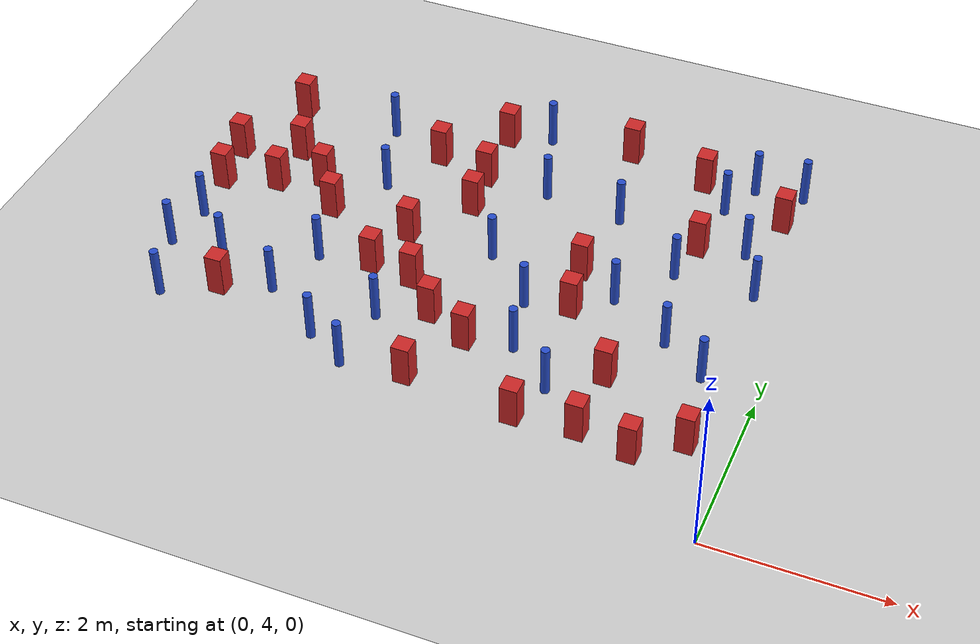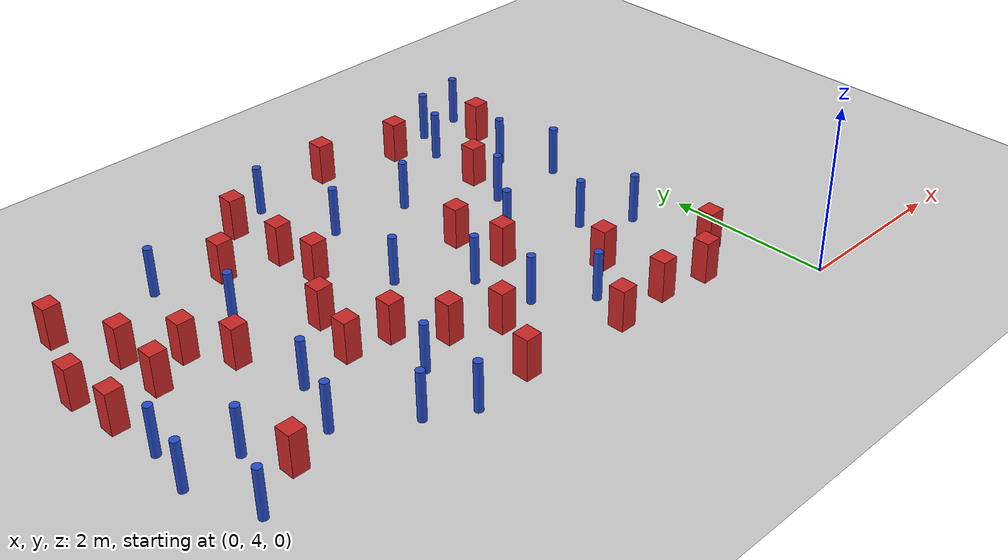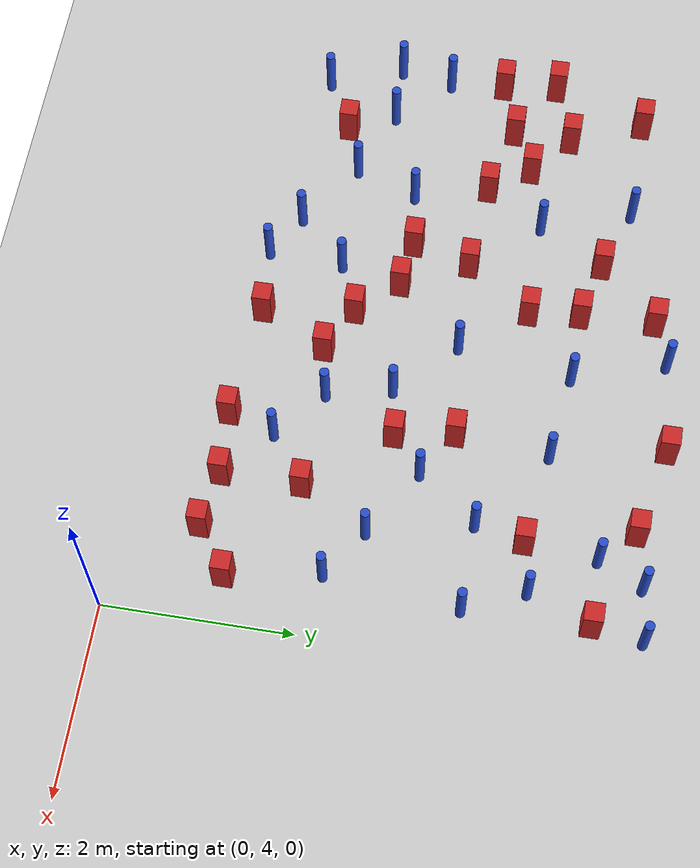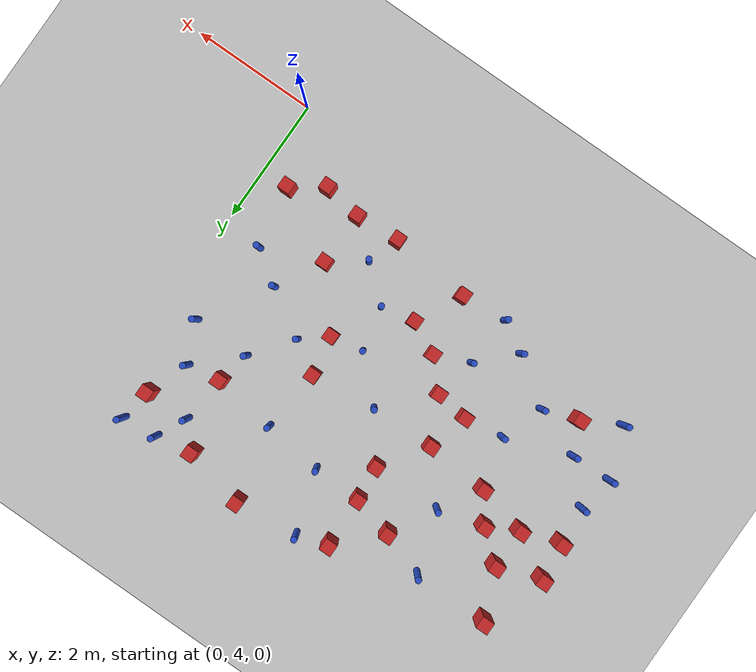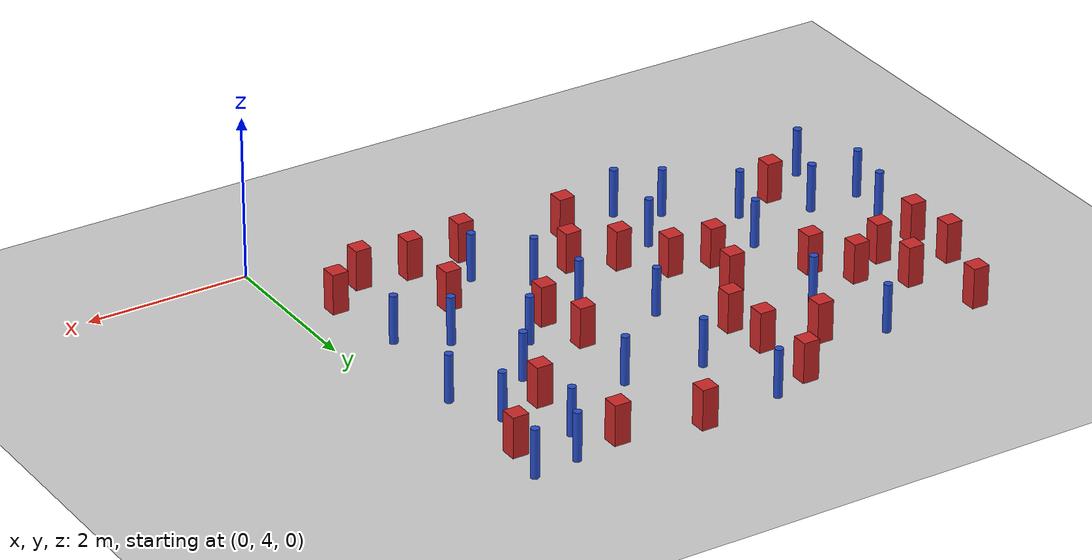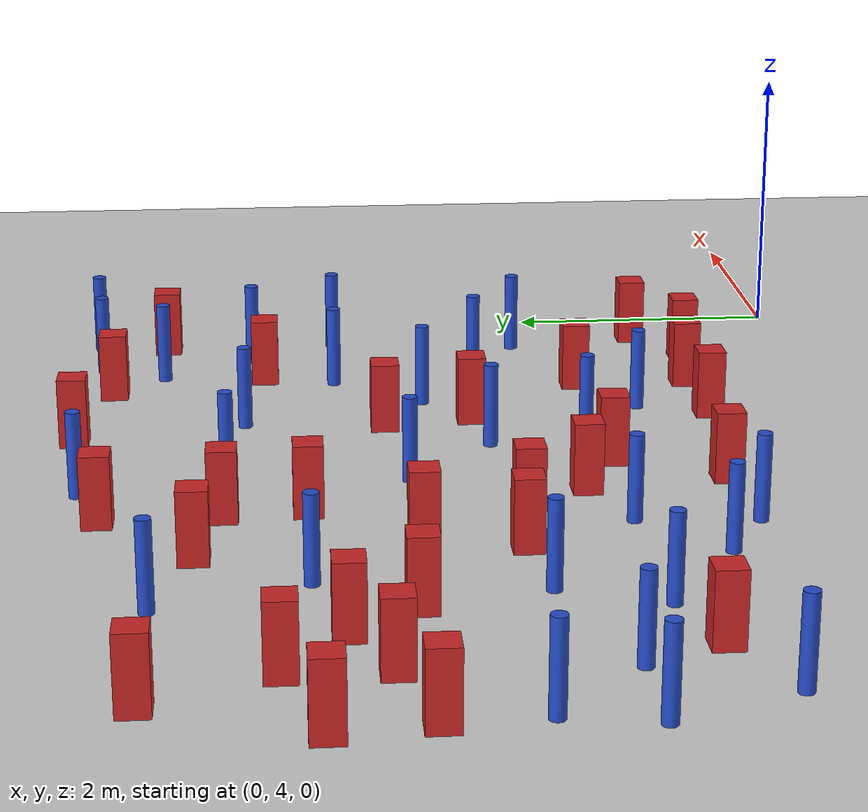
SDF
<sdf version="1.6">
 <world name="default">
  <model name="ground_plane">
   <static>1</static>
   <link name="link">
    <collision name="collision">
     <geometry><plane><normal>0 0 1</normal><size>100 100</size></plane></geometry>
     <surface><friction><ode><mu>100</mu><mu2>50</mu2></ode></friction></surface>
    </collision>
    <visual name="visual">
     <cast_shadows>0</cast_shadows>
     <geometry><plane><normal>0 0 1</normal><size>100 100</size></plane></geometry>
     <material>
      <ambient>1.0 1.0 1.0 1.0</ambient>
      <diffuse>0.8 0.8 0.8 1.0</diffuse>
      <specular>0.01 0.01 0.01 1.000000</specular>
     </material>
    </visual>
   </link>
  </model>
  <model name="pole_obstacle6">
   <static>true</static>
   <pose>-3.25830325045 8.38387927455 -9.4761961606e-06 5.49618799729e-07 2.36310414e-07 -1.55090534824e-07</pose>
   <link name="link">
    <pose>0 0 0.3 0 -0 0</pose>
    <inertial>
     <mass>1</mass>
     <inertia><ixx>0.145833</ixx><ixy>0</ixy><ixz>0</ixz><iyy>0.145833</iyy><iyz>0</iyz><izz>0.125</izz></inertia>
    </inertial>
    <collision name="collision">
     <geometry><cylinder><radius>0.05</radius><length>.6</length></cylinder></geometry>
    </collision>
    <visual name="visual">
     <geometry><cylinder><radius>0.05</radius><length>.6</length></cylinder></geometry>
     <material>
      <script><name>Gazebo/Blue</name><uri>file://media/materials/scripts/gazebo.material</uri></script>
     </material>
    </visual>
   </link>
  </model>
  <model name="pole_obstacle9">
   <static>true</static>
   <pose>-0.49709709872 7.59157421841 -9.47619616065e-06 5.49618799737e-07 2.36310414063e-07 -1.55090534797e-07</pose>
   <link name="link">
    <pose>0 0 0.3 0 -0 0</pose>
    <inertial>
     <mass>1</mass>
     <inertia><ixx>0.145833</ixx><ixy>0</ixy><ixz>0</ixz><iyy>0.145833</iyy><iyz>0</iyz><izz>0.125</izz></inertia>
    </inertial>
    <collision name="collision">
     <geometry><cylinder><radius>0.05</radius><length>.6</length></cylinder></geometry>
    </collision>
    <visual name="visual">
     <geometry><cylinder><radius>0.05</radius><length>.6</length></cylinder></geometry>
     <material>
      <script><name>Gazebo/Blue</name><uri>file://media/materials/scripts/gazebo.material</uri></script>
     </material>
    </visual>
   </link>
  </model>
  <model name="square_post_obstacle10">
   <static>true</static>
   <pose>-3.97500162084 7.84303103397 -6.11067671241e-07 -5.50515727128e-06 -8.79689657224e-07 2.37013304536e-05</pose>
   <link name="link">
    <pose>0 0 0.25 0 -0 0</pose>
    <inertial>
     <mass>100</mass>
     <inertia>
      <ixx>0.166667</ixx>
      <ixy>0</ixy>
      <ixz>0</ixz>
      <iyy>0.166667</iyy>
      <iyz>0</iyz>
      <izz>0.166667</izz>
     </inertia>
    </inertial>
    <collision name="collision"><geometry><box><size>.2 .2 .5</size></box></geometry></collision>
    <visual name="visual">
     <geometry><box><size>.2 .2 .5</size></box></geometry>
     <material>
      <script><name>Gazebo/Red</name><uri>file://media/materials/scripts/gazebo.material</uri></script>
     </material>
    </visual>
   </link>
  </model>
  <model name="pole_obstacle17">
   <static>true</static>
   <pose>-1.9095532421 6.96453747486 -9.47619616065e-06 5.49618799737e-07 2.36310414061e-07 -1.550905348e-07</pose>
   <link name="link">
    <pose>0 0 0.3 0 -0 0</pose>
    <inertial>
     <mass>1</mass>
     <inertia><ixx>0.145833</ixx><ixy>0</ixy><ixz>0</ixz><iyy>0.145833</iyy><iyz>0</iyz><izz>0.125</izz></inertia>
    </inertial>
    <collision name="collision">
     <geometry><cylinder><radius>0.05</radius><length>.6</length></cylinder></geometry>
    </collision>
    <visual name="visual">
     <geometry><cylinder><radius>0.05</radius><length>.6</length></cylinder></geometry>
     <material>
      <script><name>Gazebo/Blue</name><uri>file://media/materials/scripts/gazebo.material</uri></script>
     </material>
    </visual>
   </link>
  </model>
  <model name="pole_obstacle25">
   <static>true</static>
   <pose>-3.44679426188 7.15130122723 -9.4761961606e-06 5.49618799729e-07 2.36310414006e-07 -1.55090534822e-07</pose>
   <link name="link">
    <pose>0 0 0.3 0 -0 0</pose>
    <inertial>
     <mass>1</mass>
     <inertia><ixx>0.145833</ixx><ixy>0</ixy><ixz>0</ixz><iyy>0.145833</iyy><iyz>0</iyz><izz>0.125</izz></inertia>
    </inertial>
    <collision name="collision">
     <geometry><cylinder><radius>0.05</radius><length>.6</length></cylinder></geometry>
    </collision>
    <visual name="visual">
     <geometry><cylinder><radius>0.05</radius><length>.6</length></cylinder></geometry>
     <material>
      <script><name>Gazebo/Blue</name><uri>file://media/materials/scripts/gazebo.material</uri></script>
     </material>
    </visual>
   </link>
  </model>
  <model name="pole_obstacle29">
   <static>true</static>
   <pose>-5.40304116629 8.81195872073 -9.47619616065e-06 5.49618799737e-07 2.36310414065e-07 -1.55090534796e-07</pose>
   <link name="link">
    <pose>0 0 0.3 0 -0 0</pose>
    <inertial>
     <mass>1</mass>
     <inertia><ixx>0.145833</ixx><ixy>0</ixy><ixz>0</ixz><iyy>0.145833</iyy><iyz>0</iyz><izz>0.125</izz></inertia>
    </inertial>
    <collision name="collision">
     <geometry><cylinder><radius>0.05</radius><length>.6</length></cylinder></geometry>
    </collision>
    <visual name="visual">
     <geometry><cylinder><radius>0.05</radius><length>.6</length></cylinder></geometry>
     <material>
      <script><name>Gazebo/Blue</name><uri>file://media/materials/scripts/gazebo.material</uri></script>
     </material>
    </visual>
   </link>
  </model>
  <model name="square_post_obstacle29">
   <static>true</static>
   <pose>-4.06071656159 9.19545771763 -6.11067671241e-07 -5.50515727128e-06 -8.79689657224e-07 2.37013304536e-05</pose>
   <link name="link">
    <pose>0 0 0.25 0 -0 0</pose>
    <inertial>
     <mass>100</mass>
     <inertia>
      <ixx>0.166667</ixx>
      <ixy>0</ixy>
      <ixz>0</ixz>
      <iyy>0.166667</iyy>
      <iyz>0</iyz>
      <izz>0.166667</izz>
     </inertia>
    </inertial>
    <collision name="collision"><geometry><box><size>.2 .2 .5</size></box></geometry></collision>
    <visual name="visual">
     <geometry><box><size>.2 .2 .5</size></box></geometry>
     <material>
      <script><name>Gazebo/Red</name><uri>file://media/materials/scripts/gazebo.material</uri></script>
     </material>
    </visual>
   </link>
  </model>
  <model name="pole_obstacle36">
   <static>true</static>
   <pose>-2.81731256129 6.54237693357 -9.47619616065e-06 5.49618799738e-07 2.3631041406e-07 -1.55090534801e-07</pose>
   <link name="link">
    <pose>0 0 0.3 0 -0 0</pose>
    <inertial>
     <mass>1</mass>
     <inertia><ixx>0.145833</ixx><ixy>0</ixy><ixz>0</ixz><iyy>0.145833</iyy><iyz>0</iyz><izz>0.125</izz></inertia>
    </inertial>
    <collision name="collision">
     <geometry><cylinder><radius>0.05</radius><length>.6</length></cylinder></geometry>
    </collision>
    <visual name="visual">
     <geometry><cylinder><radius>0.05</radius><length>.6</length></cylinder></geometry>
     <material>
      <script><name>Gazebo/Blue</name><uri>file://media/materials/scripts/gazebo.material</uri></script>
     </material>
    </visual>
   </link>
  </model>
  <model name="pole_obstacle42">
   <static>true</static>
   <pose>-2.31686911551 8.26774945048 -9.4761961606e-06 5.49618799729e-07 2.36310414e-07 -1.55090534824e-07</pose>
   <link name="link">
    <pose>0 0 0.3 0 -0 0</pose>
    <inertial>
     <mass>1</mass>
     <inertia><ixx>0.145833</ixx><ixy>0</ixy><ixz>0</ixz><iyy>0.145833</iyy><iyz>0</iyz><izz>0.125</izz></inertia>
    </inertial>
    <collision name="collision">
     <geometry><cylinder><radius>0.05</radius><length>.6</length></cylinder></geometry>
    </collision>
    <visual name="visual">
     <geometry><cylinder><radius>0.05</radius><length>.6</length></cylinder></geometry>
     <material>
      <script><name>Gazebo/Blue</name><uri>file://media/materials/scripts/gazebo.material</uri></script>
     </material>
    </visual>
   </link>
  </model>
  <model name="square_post_obstacle39">
   <static>true</static>
   <pose>-1.59281042872 4.93860088127 -6.11067671241e-07 -5.50515727128e-06 -8.79689657224e-07 2.37013304536e-05</pose>
   <link name="link">
    <pose>0 0 0.25 0 -0 0</pose>
    <inertial>
     <mass>100</mass>
     <inertia>
      <ixx>0.166667</ixx>
      <ixy>0</ixy>
      <ixz>0</ixz>
      <iyy>0.166667</iyy>
      <iyz>0</iyz>
      <izz>0.166667</izz>
     </inertia>
    </inertial>
    <collision name="collision"><geometry><box><size>.2 .2 .5</size></box></geometry></collision>
    <visual name="visual">
     <geometry><box><size>.2 .2 .5</size></box></geometry>
     <material>
      <script><name>Gazebo/Red</name><uri>file://media/materials/scripts/gazebo.material</uri></script>
     </material>
    </visual>
   </link>
  </model>
  <model name="pole_obstacle52">
   <static>true</static>
   <pose>-1.01107958871 9.36770922222 -9.47619616065e-06 5.49618799737e-07 2.3631041405e-07 -1.55090534806e-07</pose>
   <link name="link">
    <pose>0 0 0.3 0 -0 0</pose>
    <inertial>
     <mass>1</mass>
     <inertia><ixx>0.145833</ixx><ixy>0</ixy><ixz>0</ixz><iyy>0.145833</iyy><iyz>0</iyz><izz>0.125</izz></inertia>
    </inertial>
    <collision name="collision">
     <geometry><cylinder><radius>0.05</radius><length>.6</length></cylinder></geometry>
    </collision>
    <visual name="visual">
     <geometry><cylinder><radius>0.05</radius><length>.6</length></cylinder></geometry>
     <material>
      <script><name>Gazebo/Blue</name><uri>file://media/materials/scripts/gazebo.material</uri></script>
     </material>
    </visual>
   </link>
  </model>
  <model name="pole_obstacle54">
   <static>true</static>
   <pose>-1.17179158137 6.51812546536 -9.47619616065e-06 5.49618799737e-07 2.36310414061e-07 -1.550905348e-07</pose>
   <link name="link">
    <pose>0 0 0.3 0 -0 0</pose>
    <inertial>
     <mass>1</mass>
     <inertia><ixx>0.145833</ixx><ixy>0</ixy><ixz>0</ixz><iyy>0.145833</iyy><iyz>0</iyz><izz>0.125</izz></inertia>
    </inertial>
    <collision name="collision">
     <geometry><cylinder><radius>0.05</radius><length>.6</length></cylinder></geometry>
    </collision>
    <visual name="visual">
     <geometry><cylinder><radius>0.05</radius><length>.6</length></cylinder></geometry>
     <material>
      <script><name>Gazebo/Blue</name><uri>file://media/materials/scripts/gazebo.material</uri></script>
     </material>
    </visual>
   </link>
  </model>
  <model name="square_post_obstacle42">
   <static>true</static>
   <pose>-4.11747421276 6.42130846629 -6.11067671241e-07 -5.50515727128e-06 -8.79689657224e-07 2.37013304536e-05</pose>
   <link name="link">
    <pose>0 0 0.25 0 -0 0</pose>
    <inertial>
     <mass>100</mass>
     <inertia>
      <ixx>0.166667</ixx>
      <ixy>0</ixy>
      <ixz>0</ixz>
      <iyy>0.166667</iyy>
      <iyz>0</iyz>
      <izz>0.166667</izz>
     </inertia>
    </inertial>
    <collision name="collision"><geometry><box><size>.2 .2 .5</size></box></geometry></collision>
    <visual name="visual">
     <geometry><box><size>.2 .2 .5</size></box></geometry>
     <material>
      <script><name>Gazebo/Red</name><uri>file://media/materials/scripts/gazebo.material</uri></script>
     </material>
    </visual>
   </link>
  </model>
  <model name="square_post_obstacle47">
   <static>true</static>
   <pose>-5.80177294039 7.64460678256 -6.11067671241e-07 -5.50515727128e-06 -8.79689657224e-07 2.37013304536e-05</pose>
   <link name="link">
    <pose>0 0 0.25 0 -0 0</pose>
    <inertial>
     <mass>100</mass>
     <inertia>
      <ixx>0.166667</ixx>
      <ixy>0</ixy>
      <ixz>0</ixz>
      <iyy>0.166667</iyy>
      <iyz>0</iyz>
      <izz>0.166667</izz>
     </inertia>
    </inertial>
    <collision name="collision"><geometry><box><size>.2 .2 .5</size></box></geometry></collision>
    <visual name="visual">
     <geometry><box><size>.2 .2 .5</size></box></geometry>
     <material>
      <script><name>Gazebo/Red</name><uri>file://media/materials/scripts/gazebo.material</uri></script>
     </material>
    </visual>
   </link>
  </model>
  <model name="square_post_obstacle50">
   <static>true</static>
   <pose>-4.03055081668 8.39545419929 -6.11067671241e-07 -5.50515727128e-06 -8.79689657224e-07 2.37013304536e-05</pose>
   <link name="link">
    <pose>0 0 0.25 0 -0 0</pose>
    <inertial>
     <mass>100</mass>
     <inertia>
      <ixx>0.166667</ixx>
      <ixy>0</ixy>
      <ixz>0</ixz>
      <iyy>0.166667</iyy>
      <iyz>0</iyz>
      <izz>0.166667</izz>
     </inertia>
    </inertial>
    <collision name="collision"><geometry><box><size>.2 .2 .5</size></box></geometry></collision>
    <visual name="visual">
     <geometry><box><size>.2 .2 .5</size></box></geometry>
     <material>
      <script><name>Gazebo/Red</name><uri>file://media/materials/scripts/gazebo.material</uri></script>
     </material>
    </visual>
   </link>
  </model>
  <model name="pole_obstacle67">
   <static>true</static>
   <pose>-1.24091768483 8.89082462209 -9.47619616065e-06 5.49618799737e-07 2.36310414046e-07 -1.55090534809e-07</pose>
   <link name="link">
    <pose>0 0 0.3 0 -0 0</pose>
    <inertial>
     <mass>1</mass>
     <inertia><ixx>0.145833</ixx><ixy>0</ixy><ixz>0</ixz><iyy>0.145833</iyy><iyz>0</iyz><izz>0.125</izz></inertia>
    </inertial>
    <collision name="collision">
     <geometry><cylinder><radius>0.05</radius><length>.6</length></cylinder></geometry>
    </collision>
    <visual name="visual">
     <geometry><cylinder><radius>0.05</radius><length>.6</length></cylinder></geometry>
     <material>
      <script><name>Gazebo/Blue</name><uri>file://media/materials/scripts/gazebo.material</uri></script>
     </material>
    </visual>
   </link>
  </model>
  <model name="square_post_obstacle52">
   <static>true</static>
   <pose>-6.60421655894 8.81158105123 -6.11067671241e-07 -5.50515727128e-06 -8.79689657224e-07 2.37013304536e-05</pose>
   <link name="link">
    <pose>0 0 0.25 0 -0 0</pose>
    <inertial>
     <mass>100</mass>
     <inertia>
      <ixx>0.166667</ixx>
      <ixy>0</ixy>
      <ixz>0</ixz>
      <iyy>0.166667</iyy>
      <iyz>0</iyz>
      <izz>0.166667</izz>
     </inertia>
    </inertial>
    <collision name="collision"><geometry><box><size>.2 .2 .5</size></box></geometry></collision>
    <visual name="visual">
     <geometry><box><size>.2 .2 .5</size></box></geometry>
     <material>
      <script><name>Gazebo/Red</name><uri>file://media/materials/scripts/gazebo.material</uri></script>
     </material>
    </visual>
   </link>
  </model>
  <model name="pole_obstacle69">
   <static>true</static>
   <pose>-0.783457412147 8.22577086679 -9.47619616065e-06 5.49618799737e-07 2.36310414038e-07 -1.55090534813e-07</pose>
   <link name="link">
    <pose>0 0 0.3 0 -0 0</pose>
    <inertial>
     <mass>1</mass>
     <inertia><ixx>0.145833</ixx><ixy>0</ixy><ixz>0</ixz><iyy>0.145833</iyy><iyz>0</iyz><izz>0.125</izz></inertia>
    </inertial>
    <collision name="collision">
     <geometry><cylinder><radius>0.05</radius><length>.6</length></cylinder></geometry>
    </collision>
    <visual name="visual">
     <geometry><cylinder><radius>0.05</radius><length>.6</length></cylinder></geometry>
     <material>
      <script><name>Gazebo/Blue</name><uri>file://media/materials/scripts/gazebo.material</uri></script>
     </material>
    </visual>
   </link>
  </model>
  <model name="pole_obstacle70">
   <static>true</static>
   <pose>-5.26468846101 6.40386994304 -9.47619616065e-06 5.49618799737e-07 2.36310414037e-07 -1.55090534814e-07</pose>
   <link name="link">
    <pose>0 0 0.3 0 -0 0</pose>
    <inertial>
     <mass>1</mass>
     <inertia><ixx>0.145833</ixx><ixy>0</ixy><ixz>0</ixz><iyy>0.145833</iyy><iyz>0</iyz><izz>0.125</izz></inertia>
    </inertial>
    <collision name="collision">
     <geometry><cylinder><radius>0.05</radius><length>.6</length></cylinder></geometry>
    </collision>
    <visual name="visual">
     <geometry><cylinder><radius>0.05</radius><length>.6</length></cylinder></geometry>
     <material>
      <script><name>Gazebo/Blue</name><uri>file://media/materials/scripts/gazebo.material</uri></script>
     </material>
    </visual>
   </link>
  </model>
  <model name="pole_obstacle74">
   <static>true</static>
   <pose>-0.647689042003 6.16428741942 -9.47619616065e-06 5.49618799737e-07 2.36310414065e-07 -1.55090534796e-07</pose>
   <link name="link">
    <pose>0 0 0.3 0 -0 0</pose>
    <inertial>
     <mass>1</mass>
     <inertia><ixx>0.145833</ixx><ixy>0</ixy><ixz>0</ixz><iyy>0.145833</iyy><iyz>0</iyz><izz>0.125</izz></inertia>
    </inertial>
    <collision name="collision">
     <geometry><cylinder><radius>0.05</radius><length>.6</length></cylinder></geometry>
    </collision>
    <visual name="visual">
     <geometry><cylinder><radius>0.05</radius><length>.6</length></cylinder></geometry>
     <material>
      <script><name>Gazebo/Blue</name><uri>file://media/materials/scripts/gazebo.material</uri></script>
     </material>
    </visual>
   </link>
  </model>
  <model name="pole_obstacle76">
   <static>true</static>
   <pose>-6.94592170926 6.01281097027 -9.47619616065e-06 5.49618799737e-07 2.36310414037e-07 -1.55090534814e-07</pose>
   <link name="link">
    <pose>0 0 0.3 0 -0 0</pose>
    <inertial>
     <mass>1</mass>
     <inertia><ixx>0.145833</ixx><ixy>0</ixy><ixz>0</ixz><iyy>0.145833</iyy><iyz>0</iyz><izz>0.125</izz></inertia>
    </inertial>
    <collision name="collision">
     <geometry><cylinder><radius>0.05</radius><length>.6</length></cylinder></geometry>
    </collision>
    <visual name="visual">
     <geometry><cylinder><radius>0.05</radius><length>.6</length></cylinder></geometry>
     <material>
      <script><name>Gazebo/Blue</name><uri>file://media/materials/scripts/gazebo.material</uri></script>
     </material>
    </visual>
   </link>
  </model>
  <model name="square_post_obstacle80">
   <static>true</static>
   <pose>-6.28294025229 7.39694359732 -6.11067671241e-07 -5.50515727128e-06 -8.79689657224e-07 2.37013304536e-05</pose>
   <link name="link">
    <pose>0 0 0.25 0 -0 0</pose>
    <inertial>
     <mass>100</mass>
     <inertia>
      <ixx>0.166667</ixx>
      <ixy>0</ixy>
      <ixz>0</ixz>
      <iyy>0.166667</iyy>
      <iyz>0</iyz>
      <izz>0.166667</izz>
     </inertia>
    </inertial>
    <collision name="collision"><geometry><box><size>.2 .2 .5</size></box></geometry></collision>
    <visual name="visual">
     <geometry><box><size>.2 .2 .5</size></box></geometry>
     <material>
      <script><name>Gazebo/Red</name><uri>file://media/materials/scripts/gazebo.material</uri></script>
     </material>
    </visual>
   </link>
  </model>
  <model name="square_post_obstacle87">
   <static>true</static>
   <pose>-4.46987664177 7.12644300444 -6.11067671241e-07 -5.50515727128e-06 -8.79689657224e-07 2.37013304536e-05</pose>
   <link name="link">
    <pose>0 0 0.25 0 -0 0</pose>
    <inertial>
     <mass>100</mass>
     <inertia>
      <ixx>0.166667</ixx>
      <ixy>0</ixy>
      <ixz>0</ixz>
      <iyy>0.166667</iyy>
      <iyz>0</iyz>
      <izz>0.166667</izz>
     </inertia>
    </inertial>
    <collision name="collision"><geometry><box><size>.2 .2 .5</size></box></geometry></collision>
    <visual name="visual">
     <geometry><box><size>.2 .2 .5</size></box></geometry>
     <material>
      <script><name>Gazebo/Red</name><uri>file://media/materials/scripts/gazebo.material</uri></script>
     </material>
    </visual>
   </link>
  </model>
  <model name="pole_obstacle98">
   <static>true</static>
   <pose>-5.50973989557 5.72454743434 -9.47619616065e-06 5.49618799737e-07 2.36310414037e-07 -1.55090534814e-07</pose>
   <link name="link">
    <pose>0 0 0.3 0 -0 0</pose>
    <inertial>
     <mass>1</mass>
     <inertia><ixx>0.145833</ixx><ixy>0</ixy><ixz>0</ixz><iyy>0.145833</iyy><iyz>0</iyz><izz>0.125</izz></inertia>
    </inertial>
    <collision name="collision">
     <geometry><cylinder><radius>0.05</radius><length>.6</length></cylinder></geometry>
    </collision>
    <visual name="visual">
     <geometry><cylinder><radius>0.05</radius><length>.6</length></cylinder></geometry>
     <material>
      <script><name>Gazebo/Blue</name><uri>file://media/materials/scripts/gazebo.material</uri></script>
     </material>
    </visual>
   </link>
  </model>
  <model name="pole_obstacle104">
   <static>true</static>
   <pose>-2.11776898118 5.38876311872 -9.47619616065e-06 5.49618799738e-07 2.3631041406e-07 -1.55090534801e-07</pose>
   <link name="link">
    <pose>0 0 0.3 0 -0 0</pose>
    <inertial>
     <mass>1</mass>
     <inertia><ixx>0.145833</ixx><ixy>0</ixy><ixz>0</ixz><iyy>0.145833</iyy><iyz>0</iyz><izz>0.125</izz></inertia>
    </inertial>
    <collision name="collision">
     <geometry><cylinder><radius>0.05</radius><length>.6</length></cylinder></geometry>
    </collision>
    <visual name="visual">
     <geometry><cylinder><radius>0.05</radius><length>.6</length></cylinder></geometry>
     <material>
      <script><name>Gazebo/Blue</name><uri>file://media/materials/scripts/gazebo.material</uri></script>
     </material>
    </visual>
   </link>
  </model>
  <model name="pole_obstacle111">
   <static>true</static>
   <pose>-6.84581680418 6.5916318161 -9.47619616065e-06 5.49618799737e-07 2.36310414037e-07 -1.55090534814e-07</pose>
   <link name="link">
    <pose>0 0 0.3 0 -0 0</pose>
    <inertial>
     <mass>1</mass>
     <inertia><ixx>0.145833</ixx><ixy>0</ixy><ixz>0</ixz><iyy>0.145833</iyy><iyz>0</iyz><izz>0.125</izz></inertia>
    </inertial>
    <collision name="collision">
     <geometry><cylinder><radius>0.05</radius><length>.6</length></cylinder></geometry>
    </collision>
    <visual name="visual">
     <geometry><cylinder><radius>0.05</radius><length>.6</length></cylinder></geometry>
     <material>
      <script><name>Gazebo/Blue</name><uri>file://media/materials/scripts/gazebo.material</uri></script>
     </material>
    </visual>
   </link>
  </model>
  <model name="pole_obstacle117">
   <static>true</static>
   <pose>-4.7794355428 5.21912465658 -9.47619616065e-06 5.49618799737e-07 2.36310414037e-07 -1.55090534814e-07</pose>
   <link name="link">
    <pose>0 0 0.3 0 -0 0</pose>
    <inertial>
     <mass>1</mass>
     <inertia><ixx>0.145833</ixx><ixy>0</ixy><ixz>0</ixz><iyy>0.145833</iyy><iyz>0</iyz><izz>0.125</izz></inertia>
    </inertial>
    <collision name="collision">
     <geometry><cylinder><radius>0.05</radius><length>.6</length></cylinder></geometry>
    </collision>
    <visual name="visual">
     <geometry><cylinder><radius>0.05</radius><length>.6</length></cylinder></geometry>
     <material>
      <script><name>Gazebo/Blue</name><uri>file://media/materials/scripts/gazebo.material</uri></script>
     </material>
    </visual>
   </link>
  </model>
  <model name="square_post_obstacle118">
   <static>true</static>
   <pose>-3.56652314185 5.01302135244 -6.11067671241e-07 -5.50515727128e-06 -8.79689657224e-07 2.37013304536e-05</pose>
   <link name="link">
    <pose>0 0 0.25 0 -0 0</pose>
    <inertial>
     <mass>100</mass>
     <inertia>
      <ixx>0.166667</ixx>
      <ixy>0</ixy>
      <ixz>0</ixz>
      <iyy>0.166667</iyy>
      <iyz>0</iyz>
      <izz>0.166667</izz>
     </inertia>
    </inertial>
    <collision name="collision"><geometry><box><size>.2 .2 .5</size></box></geometry></collision>
    <visual name="visual">
     <geometry><box><size>.2 .2 .5</size></box></geometry>
     <material>
      <script><name>Gazebo/Red</name><uri>file://media/materials/scripts/gazebo.material</uri></script>
     </material>
    </visual>
   </link>
  </model>
  <model name="square_post_obstacle125">
   <static>true</static>
   <pose>-0.987395548009 4.84221423584 -6.11067671241e-07 -5.50515727128e-06 -8.79689657224e-07 2.37013304536e-05</pose>
   <link name="link">
    <pose>0 0 0.25 0 -0 0</pose>
    <inertial>
     <mass>100</mass>
     <inertia>
      <ixx>0.166667</ixx>
      <ixy>0</ixy>
      <ixz>0</ixz>
      <iyy>0.166667</iyy>
      <iyz>0</iyz>
      <izz>0.166667</izz>
     </inertia>
    </inertial>
    <collision name="collision"><geometry><box><size>.2 .2 .5</size></box></geometry></collision>
    <visual name="visual">
     <geometry><box><size>.2 .2 .5</size></box></geometry>
     <material>
      <script><name>Gazebo/Red</name><uri>file://media/materials/scripts/gazebo.material</uri></script>
     </material>
    </visual>
   </link>
  </model>
  <model name="pole_obstacle131">
   <static>true</static>
   <pose>-2.66247023903 5.8443387187 -9.47619616065e-06 5.49618799738e-07 2.3631041406e-07 -1.55090534801e-07</pose>
   <link name="link">
    <pose>0 0 0.3 0 -0 0</pose>
    <inertial>
     <mass>1</mass>
     <inertia><ixx>0.145833</ixx><ixy>0</ixy><ixz>0</ixz><iyy>0.145833</iyy><iyz>0</iyz><izz>0.125</izz></inertia>
    </inertial>
    <collision name="collision">
     <geometry><cylinder><radius>0.05</radius><length>.6</length></cylinder></geometry>
    </collision>
    <visual name="visual">
     <geometry><cylinder><radius>0.05</radius><length>.6</length></cylinder></geometry>
     <material>
      <script><name>Gazebo/Blue</name><uri>file://media/materials/scripts/gazebo.material</uri></script>
     </material>
    </visual>
   </link>
  </model>
  <model name="square_post_obstacle127">
   <static>true</static>
   <pose>-4.6400599125 6.49024074128 -6.11067671241e-07 -5.50515727128e-06 -8.79689657224e-07 2.37013304536e-05</pose>
   <link name="link">
    <pose>0 0 0.25 0 -0 0</pose>
    <inertial>
     <mass>100</mass>
     <inertia>
      <ixx>0.166667</ixx>
      <ixy>0</ixy>
      <ixz>0</ixz>
      <iyy>0.166667</iyy>
      <iyz>0</iyz>
      <izz>0.166667</izz>
     </inertia>
    </inertial>
    <collision name="collision"><geometry><box><size>.2 .2 .5</size></box></geometry></collision>
    <visual name="visual">
     <geometry><box><size>.2 .2 .5</size></box></geometry>
     <material>
      <script><name>Gazebo/Red</name><uri>file://media/materials/scripts/gazebo.material</uri></script>
     </material>
    </visual>
   </link>
  </model>
  <model name="square_post_obstacle128">
   <static>true</static>
   <pose>-1.32110432635 8.12573163038 -6.11067671241e-07 -5.50515727128e-06 -8.79689657224e-07 2.37013304536e-05</pose>
   <link name="link">
    <pose>0 0 0.25 0 -0 0</pose>
    <inertial>
     <mass>100</mass>
     <inertia>
      <ixx>0.166667</ixx>
      <ixy>0</ixy>
      <ixz>0</ixz>
      <iyy>0.166667</iyy>
      <iyz>0</iyz>
      <izz>0.166667</izz>
     </inertia>
    </inertial>
    <collision name="collision"><geometry><box><size>.2 .2 .5</size></box></geometry></collision>
    <visual name="visual">
     <geometry><box><size>.2 .2 .5</size></box></geometry>
     <material>
      <script><name>Gazebo/Red</name><uri>file://media/materials/scripts/gazebo.material</uri></script>
     </material>
    </visual>
   </link>
  </model>
  <model name="square_post_obstacle134">
   <static>true</static>
   <pose>-6.27609361069 8.03335928922 -6.11067671241e-07 -5.50515727128e-06 -8.79689657224e-07 2.37013304536e-05</pose>
   <link name="link">
    <pose>0 0 0.25 0 -0 0</pose>
    <inertial>
     <mass>100</mass>
     <inertia>
      <ixx>0.166667</ixx>
      <ixy>0</ixy>
      <ixz>0</ixz>
      <iyy>0.166667</iyy>
      <iyz>0</iyz>
      <izz>0.166667</izz>
     </inertia>
    </inertial>
    <collision name="collision"><geometry><box><size>.2 .2 .5</size></box></geometry></collision>
    <visual name="visual">
     <geometry><box><size>.2 .2 .5</size></box></geometry>
     <material>
      <script><name>Gazebo/Red</name><uri>file://media/materials/scripts/gazebo.material</uri></script>
     </material>
    </visual>
   </link>
  </model>
  <model name="square_post_obstacle136">
   <static>true</static>
   <pose>-2.30157444127 6.63739075286 -6.11067671241e-07 -5.50515727128e-06 -8.79689657224e-07 2.37013304536e-05</pose>
   <link name="link">
    <pose>0 0 0.25 0 -0 0</pose>
    <inertial>
     <mass>100</mass>
     <inertia>
      <ixx>0.166667</ixx>
      <ixy>0</ixy>
      <ixz>0</ixz>
      <iyy>0.166667</iyy>
      <iyz>0</iyz>
      <izz>0.166667</izz>
     </inertia>
    </inertial>
    <collision name="collision"><geometry><box><size>.2 .2 .5</size></box></geometry></collision>
    <visual name="visual">
     <geometry><box><size>.2 .2 .5</size></box></geometry>
     <material>
      <script><name>Gazebo/Red</name><uri>file://media/materials/scripts/gazebo.material</uri></script>
     </material>
    </visual>
   </link>
  </model>
  <model name="square_post_obstacle142">
   <static>true</static>
   <pose>-3.19522561766 5.73772266816 -6.11067671241e-07 -5.50515727128e-06 -8.79689657224e-07 2.37013304536e-05</pose>
   <link name="link">
    <pose>0 0 0.25 0 -0 0</pose>
    <inertial>
     <mass>100</mass>
     <inertia>
      <ixx>0.166667</ixx>
      <ixy>0</ixy>
      <ixz>0</ixz>
      <iyy>0.166667</iyy>
      <iyz>0</iyz>
      <izz>0.166667</izz>
     </inertia>
    </inertial>
    <collision name="collision"><geometry><box><size>.2 .2 .5</size></box></geometry></collision>
    <visual name="visual">
     <geometry><box><size>.2 .2 .5</size></box></geometry>
     <material>
      <script><name>Gazebo/Red</name><uri>file://media/materials/scripts/gazebo.material</uri></script>
     </material>
    </visual>
   </link>
  </model>
  <model name="square_post_obstacle146">
   <static>true</static>
   <pose>-2.29176363203 4.88833840707 -6.11067671241e-07 -5.50515727128e-06 -8.79689657224e-07 2.37013304536e-05</pose>
   <link name="link">
    <pose>0 0 0.25 0 -0 0</pose>
    <inertial>
     <mass>100</mass>
     <inertia>
      <ixx>0.166667</ixx>
      <ixy>0</ixy>
      <ixz>0</ixz>
      <iyy>0.166667</iyy>
      <iyz>0</iyz>
      <izz>0.166667</izz>
     </inertia>
    </inertial>
    <collision name="collision"><geometry><box><size>.2 .2 .5</size></box></geometry></collision>
    <visual name="visual">
     <geometry><box><size>.2 .2 .5</size></box></geometry>
     <material>
      <script><name>Gazebo/Red</name><uri>file://media/materials/scripts/gazebo.material</uri></script>
     </material>
    </visual>
   </link>
  </model>
  <model name="square_post_obstacle150">
   <static>true</static>
   <pose>-5.47842693679 7.20422218579 -6.11067671241e-07 -5.50515727128e-06 -8.79689657224e-07 2.37013304536e-05</pose>
   <link name="link">
    <pose>0 0 0.25 0 -0 0</pose>
    <inertial>
     <mass>100</mass>
     <inertia>
      <ixx>0.166667</ixx>
      <ixy>0</ixy>
      <ixz>0</ixz>
      <iyy>0.166667</iyy>
      <iyz>0</iyz>
      <izz>0.166667</izz>
     </inertia>
    </inertial>
    <collision name="collision"><geometry><box><size>.2 .2 .5</size></box></geometry></collision>
    <visual name="visual">
     <geometry><box><size>.2 .2 .5</size></box></geometry>
     <material>
      <script><name>Gazebo/Red</name><uri>file://media/materials/scripts/gazebo.material</uri></script>
     </material>
    </visual>
   </link>
  </model>
  <model name="square_post_obstacle151">
   <static>true</static>
   <pose>-1.59021945089 5.78485467435 -6.11067671241e-07 -5.50515727128e-06 -8.79689657224e-07 2.37013304536e-05</pose>
   <link name="link">
    <pose>0 0 0.25 0 -0 0</pose>
    <inertial>
     <mass>100</mass>
     <inertia>
      <ixx>0.166667</ixx>
      <ixy>0</ixy>
      <ixz>0</ixz>
      <iyy>0.166667</iyy>
      <iyz>0</iyz>
      <izz>0.166667</izz>
     </inertia>
    </inertial>
    <collision name="collision"><geometry><box><size>.2 .2 .5</size></box></geometry></collision>
    <visual name="visual">
     <geometry><box><size>.2 .2 .5</size></box></geometry>
     <material>
      <script><name>Gazebo/Red</name><uri>file://media/materials/scripts/gazebo.material</uri></script>
     </material>
    </visual>
   </link>
  </model>
  <model name="square_post_obstacle152">
   <static>true</static>
   <pose>-0.490047419051 5.18340568821 -6.11067671241e-07 -5.50515727128e-06 -8.79689657224e-07 2.37013304536e-05</pose>
   <link name="link">
    <pose>0 0 0.25 0 -0 0</pose>
    <inertial>
     <mass>100</mass>
     <inertia>
      <ixx>0.166667</ixx>
      <ixy>0</ixy>
      <ixz>0</ixz>
      <iyy>0.166667</iyy>
      <iyz>0</iyz>
      <izz>0.166667</izz>
     </inertia>
    </inertial>
    <collision name="collision"><geometry><box><size>.2 .2 .5</size></box></geometry></collision>
    <visual name="visual">
     <geometry><box><size>.2 .2 .5</size></box></geometry>
     <material>
      <script><name>Gazebo/Red</name><uri>file://media/materials/scripts/gazebo.material</uri></script>
     </material>
    </visual>
   </link>
  </model>
  <model name="square_post_obstacle160">
   <static>true</static>
   <pose>-1.5967400876 9.24751790214 -6.11067671241e-07 -5.50515727128e-06 -8.79689657224e-07 2.37013304536e-05</pose>
   <link name="link">
    <pose>0 0 0.25 0 -0 0</pose>
    <inertial>
     <mass>100</mass>
     <inertia>
      <ixx>0.166667</ixx>
      <ixy>0</ixy>
      <ixz>0</ixz>
      <iyy>0.166667</iyy>
      <iyz>0</iyz>
      <izz>0.166667</izz>
     </inertia>
    </inertial>
    <collision name="collision"><geometry><box><size>.2 .2 .5</size></box></geometry></collision>
    <visual name="visual">
     <geometry><box><size>.2 .2 .5</size></box></geometry>
     <material>
      <script><name>Gazebo/Red</name><uri>file://media/materials/scripts/gazebo.material</uri></script>
     </material>
    </visual>
   </link>
  </model>
  <model name="square_post_obstacle168">
   <static>true</static>
   <pose>-4.68443798257 8.56042302645 -6.11067671241e-07 -5.50515727128e-06 -8.79689657224e-07 2.37013304536e-05</pose>
   <link name="link">
    <pose>0 0 0.25 0 -0 0</pose>
    <inertial>
     <mass>100</mass>
     <inertia>
      <ixx>0.166667</ixx>
      <ixy>0</ixy>
      <ixz>0</ixz>
      <iyy>0.166667</iyy>
      <iyz>0</iyz>
      <izz>0.166667</izz>
     </inertia>
    </inertial>
    <collision name="collision"><geometry><box><size>.2 .2 .5</size></box></geometry></collision>
    <visual name="visual">
     <geometry><box><size>.2 .2 .5</size></box></geometry>
     <material>
      <script><name>Gazebo/Red</name><uri>file://media/materials/scripts/gazebo.material</uri></script>
     </material>
    </visual>
   </link>
  </model>
  <model name="square_post_obstacle172">
   <static>true</static>
   <pose>-0.54304944127 8.89212056854 -6.11067671241e-07 -5.50515727128e-06 -8.79689657224e-07 2.37013304536e-05</pose>
   <link name="link">
    <pose>0 0 0.25 0 -0 0</pose>
    <inertial>
     <mass>100</mass>
     <inertia>
      <ixx>0.166667</ixx>
      <ixy>0</ixy>
      <ixz>0</ixz>
      <iyy>0.166667</iyy>
      <iyz>0</iyz>
      <izz>0.166667</izz>
     </inertia>
    </inertial>
    <collision name="collision"><geometry><box><size>.2 .2 .5</size></box></geometry></collision>
    <visual name="visual">
     <geometry><box><size>.2 .2 .5</size></box></geometry>
     <material>
      <script><name>Gazebo/Red</name><uri>file://media/materials/scripts/gazebo.material</uri></script>
     </material>
    </visual>
   </link>
  </model>
  <model name="square_post_obstacle183">
   <static>true</static>
   <pose>-6.89470121512 7.19974830297 -6.11067671241e-07 -5.50515727128e-06 -8.79689657224e-07 2.37013304536e-05</pose>
   <link name="link">
    <pose>0 0 0.25 0 -0 0</pose>
    <inertial>
     <mass>100</mass>
     <inertia>
      <ixx>0.166667</ixx>
      <ixy>0</ixy>
      <ixz>0</ixz>
      <iyy>0.166667</iyy>
      <iyz>0</iyz>
      <izz>0.166667</izz>
     </inertia>
    </inertial>
    <collision name="collision"><geometry><box><size>.2 .2 .5</size></box></geometry></collision>
    <visual name="visual">
     <geometry><box><size>.2 .2 .5</size></box></geometry>
     <material>
      <script><name>Gazebo/Red</name><uri>file://media/materials/scripts/gazebo.material</uri></script>
     </material>
    </visual>
   </link>
  </model>
  <model name="pole_obstacle184">
   <static>true</static>
   <pose>-0.445307467265 9.42916665538 -9.47619616065e-06 5.49618799737e-07 2.36310414031e-07 -1.55090534818e-07</pose>
   <link name="link">
    <pose>0 0 0.3 0 -0 0</pose>
    <inertial>
     <mass>1</mass>
     <inertia><ixx>0.145833</ixx><ixy>0</ixy><ixz>0</ixz><iyy>0.145833</iyy><iyz>0</iyz><izz>0.125</izz></inertia>
    </inertial>
    <collision name="collision">
     <geometry><cylinder><radius>0.05</radius><length>.6</length></cylinder></geometry>
    </collision>
    <visual name="visual">
     <geometry><cylinder><radius>0.05</radius><length>.6</length></cylinder></geometry>
     <material>
      <script><name>Gazebo/Blue</name><uri>file://media/materials/scripts/gazebo.material</uri></script>
     </material>
    </visual>
   </link>
  </model>
  <model name="square_post_obstacle185">
   <static>true</static>
   <pose>-3.70556907113 5.98746168085 -6.11067671241e-07 -5.50515727128e-06 -8.79689657224e-07 2.37013304536e-05</pose>
   <link name="link">
    <pose>0 0 0.25 0 -0 0</pose>
    <inertial>
     <mass>100</mass>
     <inertia>
      <ixx>0.166667</ixx>
      <ixy>0</ixy>
      <ixz>0</ixz>
      <iyy>0.166667</iyy>
      <iyz>0</iyz>
      <izz>0.166667</izz>
     </inertia>
    </inertial>
    <collision name="collision"><geometry><box><size>.2 .2 .5</size></box></geometry></collision>
    <visual name="visual">
     <geometry><box><size>.2 .2 .5</size></box></geometry>
     <material>
      <script><name>Gazebo/Red</name><uri>file://media/materials/scripts/gazebo.material</uri></script>
     </material>
    </visual>
   </link>
  </model>
  <model name="pole_obstacle186">
   <static>true</static>
   <pose>-5.07837237877 7.84174233766 -9.47619616065e-06 5.49618799737e-07 2.36310414037e-07 -1.55090534814e-07</pose>
   <link name="link">
    <pose>0 0 0.3 0 -0 0</pose>
    <inertial>
     <mass>1</mass>
     <inertia><ixx>0.145833</ixx><ixy>0</ixy><ixz>0</ixz><iyy>0.145833</iyy><iyz>0</iyz><izz>0.125</izz></inertia>
    </inertial>
    <collision name="collision">
     <geometry><cylinder><radius>0.05</radius><length>.6</length></cylinder></geometry>
    </collision>
    <visual name="visual">
     <geometry><cylinder><radius>0.05</radius><length>.6</length></cylinder></geometry>
     <material>
      <script><name>Gazebo/Blue</name><uri>file://media/materials/scripts/gazebo.material</uri></script>
     </material>
    </visual>
   </link>
  </model>
  <model name="square_post_obstacle193">
   <static>true</static>
   <pose>-6.0587842556 5.53294155782 -6.11067671241e-07 -5.50515727128e-06 -8.79689657224e-07 2.37013304536e-05</pose>
   <link name="link">
    <pose>0 0 0.25 0 -0 0</pose>
    <inertial>
     <mass>100</mass>
     <inertia>
      <ixx>0.166667</ixx>
      <ixy>0</ixy>
      <ixz>0</ixz>
      <iyy>0.166667</iyy>
      <iyz>0</iyz>
      <izz>0.166667</izz>
     </inertia>
    </inertial>
    <collision name="collision"><geometry><box><size>.2 .2 .5</size></box></geometry></collision>
    <visual name="visual">
     <geometry><box><size>.2 .2 .5</size></box></geometry>
     <material>
      <script><name>Gazebo/Red</name><uri>file://media/materials/scripts/gazebo.material</uri></script>
     </material>
    </visual>
   </link>
  </model>
  <model name="square_post_obstacle195">
   <static>true</static>
   <pose>-2.56895617074 9.46599525568 -6.11067671241e-07 -5.50515727128e-06 -8.79689657224e-07 2.37013304536e-05</pose>
   <link name="link">
    <pose>0 0 0.25 0 -0 0</pose>
    <inertial>
     <mass>100</mass>
     <inertia>
      <ixx>0.166667</ixx>
      <ixy>0</ixy>
      <ixz>0</ixz>
      <iyy>0.166667</iyy>
      <iyz>0</iyz>
      <izz>0.166667</izz>
     </inertia>
    </inertial>
    <collision name="collision"><geometry><box><size>.2 .2 .5</size></box></geometry></collision>
    <visual name="visual">
     <geometry><box><size>.2 .2 .5</size></box></geometry>
     <material>
      <script><name>Gazebo/Red</name><uri>file://media/materials/scripts/gazebo.material</uri></script>
     </material>
    </visual>
   </link>
  </model>
  <model name="square_post_obstacle196">
   <static>true</static>
   <pose>-2.41181212202 7.26751562684 -6.11067671241e-07 -5.50515727128e-06 -8.79689657224e-07 2.37013304536e-05</pose>
   <link name="link">
    <pose>0 0 0.25 0 -0 0</pose>
    <inertial>
     <mass>100</mass>
     <inertia>
      <ixx>0.166667</ixx>
      <ixy>0</ixy>
      <ixz>0</ixz>
      <iyy>0.166667</iyy>
      <iyz>0</iyz>
      <izz>0.166667</izz>
     </inertia>
    </inertial>
    <collision name="collision"><geometry><box><size>.2 .2 .5</size></box></geometry></collision>
    <visual name="visual">
     <geometry><box><size>.2 .2 .5</size></box></geometry>
     <material>
      <script><name>Gazebo/Red</name><uri>file://media/materials/scripts/gazebo.material</uri></script>
     </material>
    </visual>
   </link>
  </model>
  <model name="pole_obstacle200">
   <static>true</static>
   <pose>-6.29468728729 6.02925425712 -9.47619616065e-06 5.49618799737e-07 2.36310414037e-07 -1.55090534814e-07</pose>
   <link name="link">
    <pose>0 0 0.3 0 -0 0</pose>
    <inertial>
     <mass>1</mass>
     <inertia><ixx>0.145833</ixx><ixy>0</ixy><ixz>0</ixz><iyy>0.145833</iyy><iyz>0</iyz><izz>0.125</izz></inertia>
    </inertial>
    <collision name="collision">
     <geometry><cylinder><radius>0.05</radius><length>.6</length></cylinder></geometry>
    </collision>
    <visual name="visual">
     <geometry><cylinder><radius>0.05</radius><length>.6</length></cylinder></geometry>
     <material>
      <script><name>Gazebo/Blue</name><uri>file://media/materials/scripts/gazebo.material</uri></script>
     </material>
    </visual>
   </link>
  </model>
  <model name="pole_obstacle208">
   <static>true</static>
   <pose>-4.30073302614 4.939870398 -9.47619616065e-06 5.49618799737e-07 2.36310414037e-07 -1.55090534814e-07</pose>
   <link name="link">
    <pose>0 0 0.3 0 -0 0</pose>
    <inertial>
     <mass>1</mass>
     <inertia><ixx>0.145833</ixx><ixy>0</ixy><ixz>0</ixz><iyy>0.145833</iyy><iyz>0</iyz><izz>0.125</izz></inertia>
    </inertial>
    <collision name="collision">
     <geometry><cylinder><radius>0.05</radius><length>.6</length></cylinder></geometry>
    </collision>
    <visual name="visual">
     <geometry><cylinder><radius>0.05</radius><length>.6</length></cylinder></geometry>
     <material>
      <script><name>Gazebo/Blue</name><uri>file://media/materials/scripts/gazebo.material</uri></script>
     </material>
    </visual>
   </link>
  </model>
  <model name="square_post_obstacle210">
   <static>true</static>
   <pose>-6.96615366739 7.7991092942 -6.11067671241e-07 -5.50515727128e-06 -8.79689657224e-07 2.37013304536e-05</pose>
   <link name="link">
    <pose>0 0 0.25 0 -0 0</pose>
    <inertial>
     <mass>100</mass>
     <inertia>
      <ixx>0.166667</ixx>
      <ixy>0</ixy>
      <ixz>0</ixz>
      <iyy>0.166667</iyy>
      <iyz>0</iyz>
      <izz>0.166667</izz>
     </inertia>
    </inertial>
    <collision name="collision"><geometry><box><size>.2 .2 .5</size></box></geometry></collision>
    <visual name="visual">
     <geometry><box><size>.2 .2 .5</size></box></geometry>
     <material>
      <script><name>Gazebo/Red</name><uri>file://media/materials/scripts/gazebo.material</uri></script>
     </material>
    </visual>
   </link>
  </model>
  <model name="pole_obstacle212">
   <static>true</static>
   <pose>-3.57491588834 9.37127689256 -9.4761961606e-06 5.49618799729e-07 2.36310414e-07 -1.55090534824e-07</pose>
   <link name="link">
    <pose>0 0 0.3 0 -0 0</pose>
    <inertial>
     <mass>1</mass>
     <inertia><ixx>0.145833</ixx><ixy>0</ixy><ixz>0</ixz><iyy>0.145833</iyy><iyz>0</iyz><izz>0.125</izz></inertia>
    </inertial>
    <collision name="collision">
     <geometry><cylinder><radius>0.05</radius><length>.6</length></cylinder></geometry>
    </collision>
    <visual name="visual">
     <geometry><cylinder><radius>0.05</radius><length>.6</length></cylinder></geometry>
     <material>
      <script><name>Gazebo/Blue</name><uri>file://media/materials/scripts/gazebo.material</uri></script>
     </material>
    </visual>
   </link>
  </model>
  <model name="pole_obstacle217">
   <static>true</static>
   <pose>-6.64961999061 5.21755002078 -9.47619616065e-06 5.49618799737e-07 2.36310414037e-07 -1.55090534814e-07</pose>
   <link name="link">
    <pose>0 0 0.3 0 -0 0</pose>
    <inertial>
     <mass>1</mass>
     <inertia><ixx>0.145833</ixx><ixy>0</ixy><ixz>0</ixz><iyy>0.145833</iyy><iyz>0</iyz><izz>0.125</izz></inertia>
    </inertial>
    <collision name="collision">
     <geometry><cylinder><radius>0.05</radius><length>.6</length></cylinder></geometry>
    </collision>
    <visual name="visual">
     <geometry><cylinder><radius>0.05</radius><length>.6</length></cylinder></geometry>
     <material>
      <script><name>Gazebo/Blue</name><uri>file://media/materials/scripts/gazebo.material</uri></script>
     </material>
    </visual>
   </link>
  </model>
  <model name="pole_obstacle223">
   <static>true</static>
   <pose>-1.42815999061 7.60414002078 -9.47619616065e-06 5.49618799737e-07 2.36310414061e-07 -1.550905348e-07</pose>
   <link name="link">
    <pose>0 0 0.3 0 -0 0</pose>
    <inertial>
     <mass>1</mass>
     <inertia><ixx>0.145833</ixx><ixy>0</ixy><ixz>0</ixz><iyy>0.145833</iyy><iyz>0</iyz><izz>0.125</izz></inertia>
    </inertial>
    <collision name="collision">
     <geometry><cylinder><radius>0.05</radius><length>.6</length></cylinder></geometry>
    </collision>
    <visual name="visual">
     <geometry><cylinder><radius>0.05</radius><length>.6</length></cylinder></geometry>
     <material>
      <script><name>Gazebo/Blue</name><uri>file://media/materials/scripts/gazebo.material</uri></script>
     </material>
    </visual>
   </link>
  </model>
  <model name="pole_obstacle225">
   <static>true</static>
   <pose>-4.25329999061 5.75404002078 -9.47619616065e-06 5.49618799737e-07 2.36310414037e-07 -1.55090534814e-07</pose>
   <link name="link">
    <pose>0 0 0.3 0 -0 0</pose>
    <inertial>
     <mass>1</mass>
     <inertia><ixx>0.145833</ixx><ixy>0</ixy><ixz>0</ixz><iyy>0.145833</iyy><iyz>0</iyz><izz>0.125</izz></inertia>
    </inertial>
    <collision name="collision">
     <geometry><cylinder><radius>0.05</radius><length>.6</length></cylinder></geometry>
    </collision>
    <visual name="visual">
     <geometry><cylinder><radius>0.05</radius><length>.6</length></cylinder></geometry>
     <material>
      <script><name>Gazebo/Blue</name><uri>file://media/materials/scripts/gazebo.material</uri></script>
     </material>
    </visual>
   </link>
  </model>
 </world>
</sdf>
